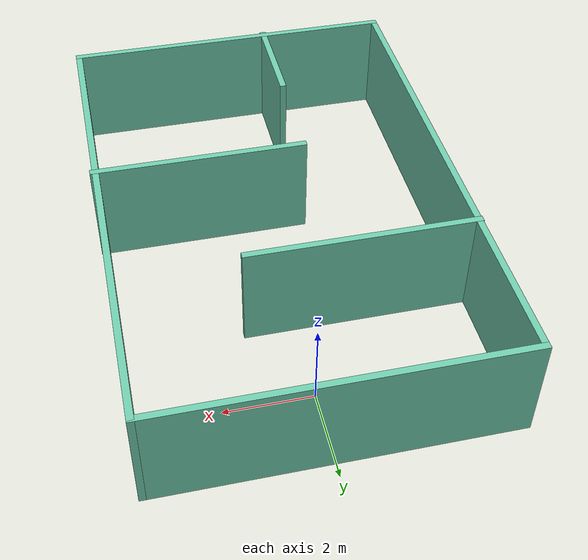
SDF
<?xml version='1.0'?>
<sdf version='1.7'>
  <model name='maplevel2'>
    <pose>-0.071597 -4.20002 0 0 -0 0</pose>
    <link name='Wall_30'>
      <collision name='Wall_30_Collision'>
        <geometry>
          <box>
            <size>11.75 0.15 2.5</size>
          </box>
        </geometry>
        <pose>0 0 1.25 0 -0 0</pose>
      </collision>
      <visual name='Wall_30_Visual'>
        <pose>0 0 1.25 0 -0 0</pose>
        <geometry>
          <box>
            <size>11.75 0.15 2.5</size>
          </box>
        </geometry>
        <material>
          <script>
            <uri>file://media/materials/scripts/gazebo.material</uri>
            <name>Gazebo/Grey</name>
          </script>
          <ambient>0.435294 0.796078 0.67451 1</ambient>
        </material>
        <meta>
          <layer>0</layer>
        </meta>
      </visual>
      <pose>-3.94031 0.025487 0 0 -0 -1.5708</pose>
    </link>
    <link name='Wall_31'>
      <collision name='Wall_31_Collision'>
        <geometry>
          <box>
            <size>8 0.15 2.5</size>
          </box>
        </geometry>
        <pose>0 0 1.25 0 -0 0</pose>
      </collision>
      <visual name='Wall_31_Visual'>
        <pose>0 0 1.25 0 -0 0</pose>
        <geometry>
          <box>
            <size>8 0.15 2.5</size>
          </box>
        </geometry>
        <material>
          <script>
            <uri>file://media/materials/scripts/gazebo.material</uri>
            <name>Gazebo/Grey</name>
          </script>
          <ambient>0.435294 0.796078 0.67451 1</ambient>
        </material>
        <meta>
          <layer>0</layer>
        </meta>
      </visual>
      <pose>-0.015308 -5.77451 0 0 -0 0</pose>
    </link>
    <link name='Wall_35'>
      <collision name='Wall_35_Collision'>
        <geometry>
          <box>
            <size>11.75 0.15 2.5</size>
          </box>
        </geometry>
        <pose>0 0 1.25 0 -0 0</pose>
      </collision>
      <visual name='Wall_35_Visual'>
        <pose>0 0 1.25 0 -0 0</pose>
        <geometry>
          <box>
            <size>11.75 0.15 2.5</size>
          </box>
        </geometry>
        <material>
          <script>
            <uri>file://media/materials/scripts/gazebo.material</uri>
            <name>Gazebo/Grey</name>
          </script>
          <ambient>0.435294 0.796078 0.67451 1</ambient>
        </material>
        <meta>
          <layer>0</layer>
        </meta>
      </visual>
      <pose>3.90969 0.025487 0 0 -0 1.5708</pose>
    </link>
    <link name='Wall_36'>
      <collision name='Wall_36_Collision'>
        <geometry>
          <box>
            <size>8 0.15 2.5</size>
          </box>
        </geometry>
        <pose>0 0 1.25 0 -0 0</pose>
      </collision>
      <visual name='Wall_36_Visual'>
        <pose>0 0 1.25 0 -0 0</pose>
        <geometry>
          <box>
            <size>8 0.15 2.5</size>
          </box>
        </geometry>
        <material>
          <script>
            <uri>file://media/materials/scripts/gazebo.material</uri>
            <name>Gazebo/Grey</name>
          </script>
          <ambient>0.435294 0.796078 0.67451 1</ambient>
        </material>
        <meta>
          <layer>0</layer>
        </meta>
      </visual>
      <pose>-0.015308 5.82549 0 0 -0 3.14159</pose>
    </link>
    <link name='Wall_38'>
      <collision name='Wall_38_Collision'>
        <geometry>
          <box>
            <size>5.25 0.15 2.5</size>
          </box>
        </geometry>
        <pose>0 0 1.25 0 -0 0</pose>
      </collision>
      <visual name='Wall_38_Visual'>
        <pose>0 0 1.25 0 -0 0</pose>
        <geometry>
          <box>
            <size>5.25 0.15 2.5</size>
          </box>
        </geometry>
        <material>
          <script>
            <uri>file://media/materials/scripts/gazebo.material</uri>
            <name>Gazebo/Grey</name>
          </script>
          <ambient>0.435294 0.796078 0.67451 1</ambient>
        </material>
        <meta>
          <layer>0</layer>
        </meta>
      </visual>
      <pose>-1.41205 2.22937 0 0 -0 0</pose>
    </link>
    <link name='Wall_40'>
      <collision name='Wall_40_Collision'>
        <geometry>
          <box>
            <size>5 0.15 2.5</size>
          </box>
        </geometry>
        <pose>0 0 1.25 0 -0 0</pose>
      </collision>
      <visual name='Wall_40_Visual'>
        <pose>0 0 1.25 0 -0 0</pose>
        <geometry>
          <box>
            <size>5 0.15 2.5</size>
          </box>
        </geometry>
        <material>
          <script>
            <uri>file://media/materials/scripts/gazebo.material</uri>
            <name>Gazebo/Grey</name>
          </script>
          <ambient>0.435294 0.796078 0.67451 1</ambient>
        </material>
        <meta>
          <layer>0</layer>
        </meta>
      </visual>
      <pose>1.53705 -1.09195 0 0 -0 3.14159</pose>
    </link>
    <link name='Wall_42'>
      <collision name='Wall_42_Collision'>
        <geometry>
          <box>
            <size>2.5 0.15 2.5</size>
          </box>
        </geometry>
        <pose>0 0 1.25 0 -0 0</pose>
      </collision>
      <visual name='Wall_42_Visual'>
        <pose>0 0 1.25 0 -0 0</pose>
        <geometry>
          <box>
            <size>2.5 0.15 2.5</size>
          </box>
        </geometry>
        <material>
          <script>
            <uri>file://media/materials/scripts/gazebo.material</uri>
            <name>Gazebo/Grey</name>
          </script>
          <ambient>0.435294 0.796078 0.67451 1</ambient>
        </material>
        <meta>
          <layer>0</layer>
        </meta>
      </visual>
      <pose>-0.928401 -4.65049 0 0 -0 1.5708</pose>
    </link>
    <static>1</static>
  </model>
</sdf>
